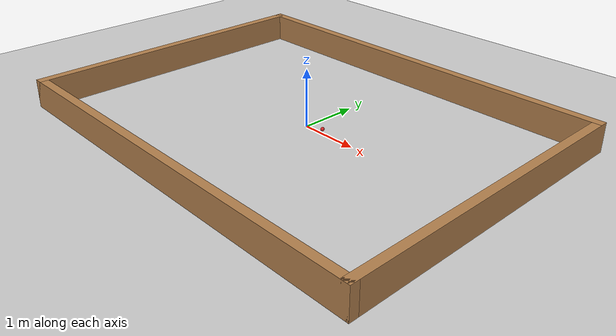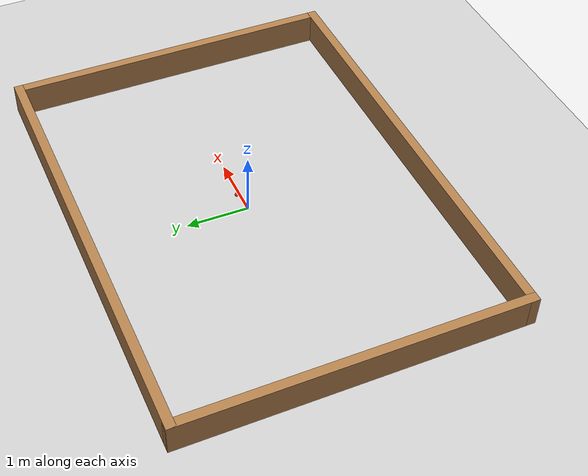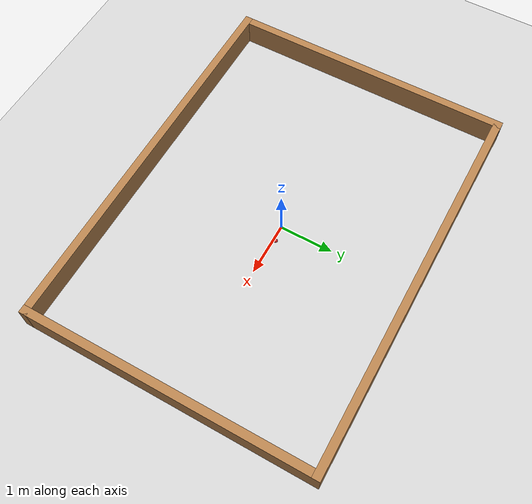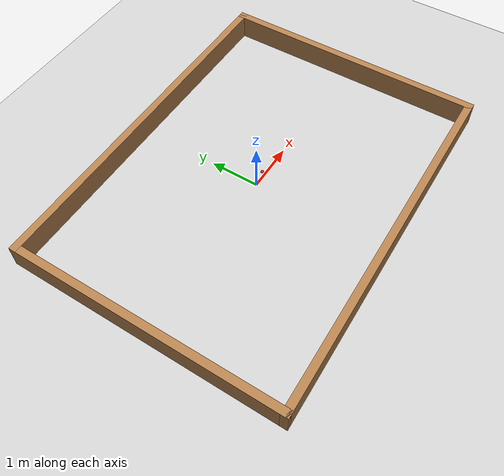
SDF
<sdf version="1.7">
 <world name="default">
  <light name="sun" type="directional">
   <pose>0 0 10 0 -0 0</pose>
   <diffuse>0.8 0.8 0.8 1</diffuse>
   <specular>0.2 0.2 0.2 1</specular>
   <attenuation>
    <range>1000</range>
    <constant>0.9</constant>
    <linear>0.01</linear>
    <quadratic>0.001</quadratic>
   </attenuation>
   <direction>-0.5 0.1 -0.9</direction>
   <spot><inner_angle>0</inner_angle><outer_angle>0</outer_angle><falloff>0</falloff></spot>
  </light>
  <model name="ground_plane">
   <static>1</static>
   <link name="link">
    <collision name="collision">
     <geometry><plane><normal>0 0 1</normal><size>100 100</size></plane></geometry>
     <surface>
      <contact><collide_bitmask>65535</collide_bitmask></contact>
      <friction><ode><mu>100</mu><mu2>50</mu2></ode></friction>
     </surface>
    </collision>
    <visual name="visual">
     <cast_shadows>0</cast_shadows>
     <geometry><plane><normal>0 0 1</normal><size>100 100</size></plane></geometry>
     <material>
      <script><uri>file://media/materials/scripts/gazebo.material</uri><name>Gazebo/Grey</name></script>
     </material>
    </visual>
   </link>
  </model>
  <gravity>0 0 -9.8</gravity>
  <magnetic_field>6e-06 2.3e-05 -4.2e-05</magnetic_field>
  <atmosphere type="adiabatic"/>
  <physics type="ode">
   <max_step_size>0.001</max_step_size>
   <real_time_factor>1</real_time_factor>
   <real_time_update_rate>1000</real_time_update_rate>
  </physics>
  <scene><ambient>0.4 0.4 0.4 1</ambient><background>0.7 0.7 0.7 1</background><shadows>1</shadows></scene>
  <spherical_coordinates>
   <surface_model>EARTH_WGS84</surface_model>
   <latitude_deg>0</latitude_deg>
   <longitude_deg>0</longitude_deg>
   <elevation>0</elevation>
   <heading_deg>0</heading_deg>
  </spherical_coordinates>
  <model name="field_walls">
   <pose>-0.007 -0.088475 0 0 -0 0</pose>
   <link name="Wall_1">
    <collision name="Wall_1_Collision">
     <geometry><box><size>7.35 0.15 0.5</size></box></geometry>
     <pose>0 0 0.25 0 -0 0</pose>
    </collision>
    <visual name="Wall_1_Visual">
     <pose>0 0 0.25 0 -0 0</pose>
     <geometry><box><size>7.35 0.15 0.5</size></box></geometry>
     <material>
      <script><uri>file://media/materials/scripts/gazebo.material</uri><name>Gazebo/Wood</name></script>
      <ambient>1 1 1 1</ambient>
     </material>
     <meta><layer>0</layer></meta>
    </visual>
    <pose>0 -2.675 0 0 -0 0</pose>
   </link>
   <link name="Wall_10">
    <collision name="Wall_10_Collision">
     <geometry><box><size>7.35 0.15 0.5</size></box></geometry>
     <pose>0 0 0.25 0 -0 0</pose>
    </collision>
    <visual name="Wall_10_Visual">
     <pose>0 0 0.25 0 -0 0</pose>
     <geometry><box><size>7.35 0.15 0.5</size></box></geometry>
     <material>
      <script><uri>file://media/materials/scripts/gazebo.material</uri><name>Gazebo/Wood</name></script>
      <ambient>1 1 1 1</ambient>
     </material>
     <meta><layer>0</layer></meta>
    </visual>
    <pose>0 2.675 0 0 -0 0</pose>
   </link>
   <link name="Wall_12">
    <collision name="Wall_12_Collision">
     <geometry><box><size>5.5 0.15 0.5</size></box></geometry>
     <pose>0 0 0.25 0 -0 0</pose>
    </collision>
    <visual name="Wall_12_Visual">
     <pose>0 0 0.25 0 -0 0</pose>
     <geometry><box><size>5.5 0.15 0.5</size></box></geometry>
     <material>
      <script><uri>file://media/materials/scripts/gazebo.material</uri><name>Gazebo/Wood</name></script>
      <ambient>1 1 1 1</ambient>
     </material>
     <meta><layer>0</layer></meta>
    </visual>
    <pose>3.6 0 0 0 -0 -1.5708</pose>
   </link>
   <link name="Wall_9">
    <collision name="Wall_9_Collision">
     <geometry><box><size>5.5 0.15 0.5</size></box></geometry>
     <pose>0 0 0.25 0 -0 0</pose>
    </collision>
    <visual name="Wall_9_Visual">
     <pose>0 0 0.25 0 -0 0</pose>
     <geometry><box><size>5.5 0.15 0.5</size></box></geometry>
     <material>
      <script><uri>file://media/materials/scripts/gazebo.material</uri><name>Gazebo/Wood</name></script>
      <ambient>1 1 1 1</ambient>
     </material>
     <meta><layer>0</layer></meta>
    </visual>
    <pose>-3.6 0 0 0 -0 1.5708</pose>
   </link>
   <static>1</static>
  </model>
  <model name="RoboCup SPL Ball">
   <static>0</static>
   <link name="ball">
    <inertial>
     <mass>0.0056</mass>
     <inertia>
      <ixx>2.37e-06</ixx>
      <iyy>2.37e-06</iyy>
      <izz>2.37e-06</izz>
      <ixy>0</ixy>
      <ixz>0</ixz>
      <iyz>0</iyz>
     </inertia>
    </inertial>
    <collision name="collision"><geometry><sphere><radius>0.0325</radius></sphere></geometry></collision>
    <visual name="visual">
     <geometry><sphere><radius>0.0325</radius></sphere></geometry>
     <material>
      <script><uri>file://media/materials/scripts/gazebo.material</uri><name>Gazebo/RedBright</name></script>
     </material>
    </visual>
   </link>
   <pose>0.304739 0.057443 0.0425 0 -0 0</pose>
  </model>
 </world>
</sdf>
